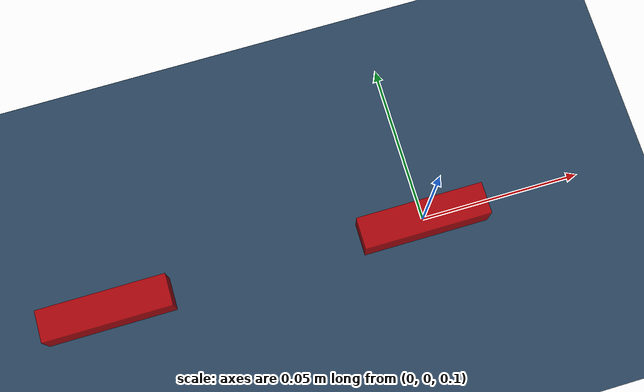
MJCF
<!-- 单腿的理想杆球模型 -->

<mujoco model="v2_4">
  <compiler angle="radian"/>
  <option timestep="0.001" iterations="2000" gravity="0 0 -9.8" tolerance="1e-10"/>

  <default>
    <geom density="418"/>
  </default>

    <asset>
        <texture name="grid" type="2d" builtin="checker" rgb1=".1 .2 .3"
            rgb2=".2 .3 .4" width="300" height="300"/>
        <material name="grid" texture="grid" texrepeat="8 8" reflectance=".2"/>
    </asset>

    <worldbody>
        <light name="top" pos="0 0 5"/>
        <geom name="floor" size="10 10 .01" condim="3" type="plane" material="grid"/>
        <body name="head" pos="0 0 0.1">
            <geom name="head_geom" size="0.02 0.005 0.005" type="box" rgba="0.8 0 0 0.8" mass="3" solref="0.02 1" solimp="0.9 0.95 0.001"/>
            <freejoint/>
            <body name="tail" pos="-0.1 0 0">
                <geom name="tail_geom" size="0.02 0.005 0.005" type="box" rgba="0.8 0 0 0.8" mass="3" solref="0.02 1" solimp="0.9 0.95 0.001"/>
                <joint name="head_joint" type="slide" axis="-1 0 0" damping="0" stiffness="0" springref="0"/>
            </body>
        </body>
    </worldbody>

          <!-- 增加在RB_BAA_LowerJoint等关节中加入8个位置控制器，要求增加位置限制 -->
    <actuator>
        <motor joint="head_joint" ctrllimited="true" ctrlrange="-200 200" />
    </actuator>

    <!-- 建立并联关系，如 RB_BAA_LOLink 应该与 RB_Calf 连接 -->
    <equality>
    </equality>

    <contact>
        <pair geom1="floor" geom2="head_geom" friction="1 1 0.005 0.0001 0.0001"/>
        <pair geom1="floor" geom2="tail_geom" friction="0 0 0.005 0.0001 0.0001"/>
    </contact>

</mujoco>
